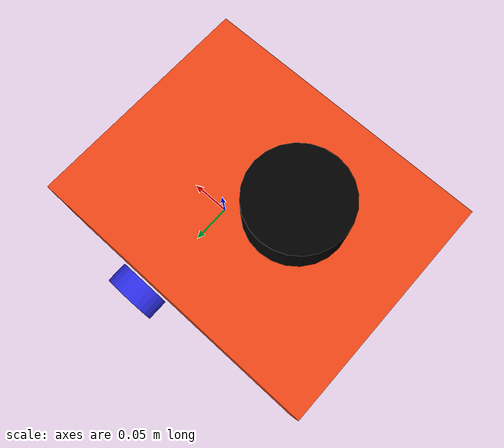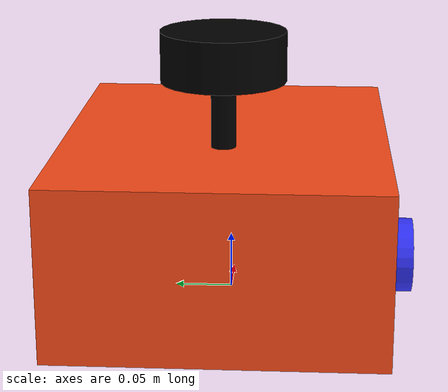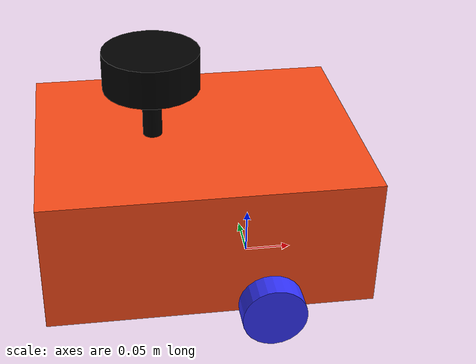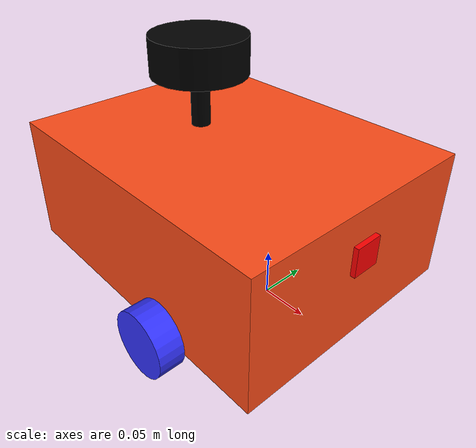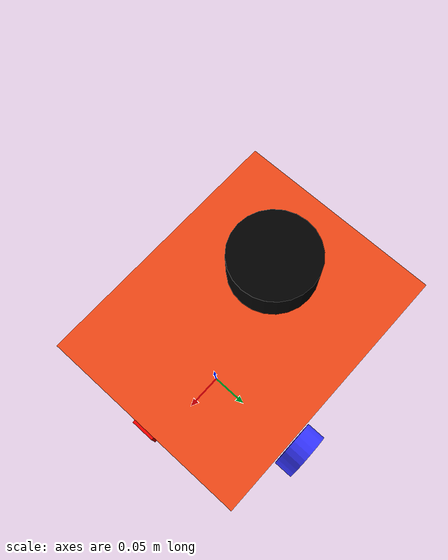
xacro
<?xml version="1.0"?>
<robot xmlns:xacro="http://www.ros.org/wiki/xacro"  name="robot">

    <xacro:arg name="use_ros2_control" default="true"/>
    <xacro:arg name="sim_mode" default="false"/>

    <xacro:include filename="rover_core.xacro" />

    <xacro:if value="$(arg use_ros2_control)">
        <xacro:include filename="ros2_control.xacro" />
    </xacro:if>
    <xacro:unless value="$(arg use_ros2_control)">
        <xacro:include filename="gazebo_control.xacro" />
    </xacro:unless>
    <xacro:include filename="lidar.xacro" />
    <xacro:include filename="camera.xacro" />
    <xacro:include filename="imu.xacro" />

</robot>

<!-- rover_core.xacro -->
<robot xmlns:xacro="http://www.ros.org/wiki/xacro" >

    <xacro:include filename="inertial_macros.xacro"/>

    <xacro:property name="chassis_length" value="0.335"/>
    <xacro:property name="chassis_width" value="0.265"/>
    <xacro:property name="chassis_height" value="0.138"/>
    <xacro:property name="chassis_mass" value="1.0"/>
    <xacro:property name="wheel_radius" value="0.033"/>
    <xacro:property name="wheel_thickness" value="0.026"/>
    <xacro:property name="wheel_mass" value="0.05"/>
    <xacro:property name="wheel_offset_x" value="0.226"/>
    <xacro:property name="wheel_offset_y" value="0.1485"/>
    <xacro:property name="wheel_offset_z" value="0.01"/>
    <xacro:property name="caster_wheel_radius" value="0.01"/>
    <xacro:property name="caster_wheel_mass" value="0.01"/>
    <xacro:property name="caster_wheel_offset_x" value="0.075"/>
    <xacro:property name="caster_wheel_offset_z" value="${wheel_offset_z - wheel_radius + caster_wheel_radius}"/>
    <material name="rover_white">
        <color rgba="1 1 1 1" />
    </material>

    <material name="rover_orange">
        <color rgba="1 0.3 0.1 1"/>
    </material>

    <material name="rover_blue">
        <color rgba="0.2 0.2 1 1"/>
    </material>

    <material name="rover_black">
        <color rgba="0 0 0 1"/>
    </material>

    <material name="rover_red">
        <color rgba="1 0 0 1"/>
    </material>

    <!-- BASE LINK -->

    <link name="base_link">

    </link>

    <!-- BASE_FOOTPRINT LINK -->

<joint name="base_footprint_joint" type="fixed">
        <parent link="base_footprint"/>
        <child link="base_link"/>
        <origin xyz="0 0 0.033" rpy="0 0 0"/>
    </joint>
    <link name="base_footprint">
    </link>

    <!-- CHASSIS LINK -->

    <joint name="chassis_joint" type="fixed">
        <parent link="base_link"/>
        <child link="chassis"/>
        <origin xyz="${-wheel_offset_x} 0 ${-wheel_offset_z}"/>
    </joint>

    <link name="chassis">
        <visual>
            <origin xyz="${chassis_length/2} 0 ${chassis_height/2}"/>
            <geometry>
                <box size="${chassis_length} ${chassis_width} ${chassis_height}"/>
            </geometry>
            <material name="rover_orange"/>
        </visual>
        <collision>
            <origin xyz="${chassis_length/2} 0 ${chassis_height/2}"/>
            <geometry>
                <box size="${chassis_length} ${chassis_width} ${chassis_height}"/>
            </geometry>
        </collision>
        <xacro:inertial_box mass="0.5" x="${chassis_length}" y="${chassis_width}" z="${chassis_height}">
            <origin xyz="${chassis_length/2} 0 ${chassis_height/2}" rpy="0 0 0"/>
        </xacro:inertial_box>
    </link>

    <gazebo reference="chassis">
        <material>Gazebo/Orange</material>
    </gazebo>

    <!-- LEFT WHEEL LINK -->

    <joint name="left_wheel_joint" type="continuous">
        <parent link="base_link"/>
        <child link="left_wheel"/>
        <origin xyz="0 ${wheel_offset_y} 0" rpy="-${pi/2} 0 0" />
        <axis xyz="0 0 1"/>
    </joint>

    <link name="left_wheel">
        <visual>
            <geometry>
                <cylinder radius="${wheel_radius}" length="${wheel_thickness}"/>
            </geometry>
            <material name="rover_blue"/>
        </visual>
        <collision>
            <geometry>
                <cylinder radius="${wheel_radius}" length="${wheel_thickness}"/>
            </geometry>
        </collision>
        <xacro:inertial_cylinder mass="${wheel_mass}" length="${wheel_thickness}" radius="${wheel_radius}">
            <origin xyz="0 0 0" rpy="0 0 0"/>
        </xacro:inertial_cylinder>
    </link>

    <gazebo reference="left_wheel">
        <material>Gazebo/Blue</material>
     <mu1>0.5</mu1>
<mu2>0.5</mu2>
    </gazebo>

    <!-- RIGHT WHEEL LINK -->

    <joint name="right_wheel_joint" type="continuous">
        <parent link="base_link"/>
        <child link="right_wheel"/>
        <origin xyz="0 ${-wheel_offset_y} 0" rpy="${pi/2} 0 0" />
        <axis xyz="0 0 -1"/>
    </joint>

    <link name="right_wheel">
        <visual>
            <geometry>
                <cylinder radius="${wheel_radius}" length="${wheel_thickness}"/>
            </geometry>
            <material name="rover_blue"/>
        </visual>
        <collision>
            <geometry>
               <cylinder radius="${wheel_radius}" length="${wheel_thickness}"/>
            </geometry>
        </collision>
        <xacro:inertial_cylinder mass="${wheel_mass}" length="${wheel_thickness}" radius="${wheel_radius}">
            <origin xyz="0 0 0" rpy="0 0 0"/>
        </xacro:inertial_cylinder>
    </link>

    <gazebo reference="right_wheel">
        <material>Gazebo/Blue</material>
       <mu1>0.5</mu1>
<mu2>0.5</mu2>
    </gazebo>

    <!-- CASTER WHEEL LINK -->

    <joint name="caster_wheel_joint" type="fixed">
        <parent link="chassis"/>
        <child link="caster_wheel"/>
        <origin xyz="${caster_wheel_offset_x} 0 ${caster_wheel_offset_z}"/>
    </joint>

    <link name="caster_wheel">
        <visual>
            <geometry>
                <sphere radius="${caster_wheel_radius}"/>
            </geometry>
            <material name="rover_white"/>
        </visual>
        <collision>
            <geometry>
                <sphere radius="${caster_wheel_radius}" />
            </geometry>
        </collision>
        <xacro:inertial_sphere mass="${caster_wheel_mass}" radius="${caster_wheel_radius}">
            <origin xyz="0 0 0" rpy="0 0 0"/>
        </xacro:inertial_sphere>
    </link>

  <gazebo reference="caster_wheel">
        <material>Gazebo/White</material>
        <mu1>0.00001</mu1>
        <mu2>0.00001</mu2>
    </gazebo>
</robot>

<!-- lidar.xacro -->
<robot xmlns:xacro="http://www.ros.org/wiki/xacro" >

    <joint name="laser_joint" type="fixed">
        <parent link="chassis"/>
        <child link="laser_frame"/>
        <origin xyz="0.122 0 0.212" rpy="0 0 0"/>
    </joint>

    <link name="laser_frame">
        <visual>
            <geometry>
                <cylinder radius="0.05" length="0.04"/>
            </geometry>
            <material name="rover_black"/>
        </visual>
        <visual>
            <origin xyz="0 0 -0.05"/>
            <geometry>
                <cylinder radius="0.01" length="0.1"/>
            </geometry>
            <material name="rover_black"/>
        </visual>
        <collision>
            <geometry>
                <cylinder radius="0.05" length="0.04"/>
            </geometry>
        </collision>
        <xacro:inertial_cylinder mass="0.01" length="0.04" radius="0.05">
            <origin xyz="0 0 0" rpy="0 0 0"/>
        </xacro:inertial_cylinder>
    </link>

 <gazebo reference="laser_frame">
    <material>Gazebo/Black</material>
    <sensor name="laser" type="gpu_lidar">
        <always_on>true</always_on>
        <visualize>true</visualize>
        <update_rate>10</update_rate>
        <topic>scan</topic>
        <gz_frame_id>laser_frame</gz_frame_id>
        <ray>
            <scan>
                <horizontal>
                    <samples>360</samples>
                    <resolution>1.0</resolution>
                    <min_angle>-3.14159</min_angle>
                    <max_angle>3.14159</max_angle>
                </horizontal>
            </scan>
            <range>
                <min>0.1</min>
                <max>12.0</max>
                <resolution>0.015</resolution>
            </range>
            <noise>
                <type>gaussian</type>
                <mean>0.0</mean>
                <stddev>0.01</stddev>
            </noise>
        </ray>
    </sensor>
</gazebo>
</robot>

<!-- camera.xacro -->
<robot xmlns:xacro="http://www.ros.org/wiki/xacro">

    <!-- 1. Keep your tilt property here -->
    <xacro:property name="camera_tilt" value="${0 * pi / 180}"/>

    <joint name="camera_joint" type="fixed">
    <parent link="chassis"/>
    <child link="camera_link"/>
    <origin xyz="0.335 -0.001 0.09" rpy="0 ${camera_tilt} 0"/>
    </joint>

    <link name="camera_link">
        <visual>
            <origin xyz="0 0 0" rpy="0 ${camera_tilt} 0" />
            <geometry>
                <box size="0.010 0.03 0.03" />
            </geometry>
            <material name="rover_red" />
        </visual>
    </link>

    <joint name="camera_optical_joint" type="fixed">
        <parent link="camera_link"/>
        <child link="camera_link_optical"/>
        <origin xyz="0 0 0" rpy="${-pi/2} 0 ${-pi/2}"/>
    </joint>

    <link name="camera_link_optical"></link>

    <gazebo reference="camera_link">
        <sensor name="camera" type="rgbd_camera">
            <always_on>true</always_on>
            <update_rate>30</update_rate>
            <topic>camera</topic>

            <!-- Use camera_link so Gazebo tilts the camera sensor frame naturally -->
            <gz_frame_id>camera_link</gz_frame_id>

            <camera name="camera">
                <horizontal_fov>0.96</horizontal_fov>
                <image>
                    <width>640</width>
                    <height>480</height>
                    <format>R8G8B8</format>
                </image>
                <clip>
                    <near>0.01</near>
                    <far>90.0</far>
                </clip>
                <depth_camera>
                    <clip>
                        <near>0.1</near>
                        <far>90.0</far>
                    </clip>
                </depth_camera>
            </camera>
        </sensor>
    </gazebo>

</robot>

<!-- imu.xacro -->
<robot xmlns:xacro="http://www.ros.org/wiki/xacro">

    <joint name="imu_joint" type="fixed">
        <parent link="chassis"/>
        <child link="imu_link"/>
        <origin xyz="0.15 0 0.1" rpy="0 0 0"/>
    </joint>

    <link name="imu_link">
        <visual>
            <geometry>
                <box size="0.02 0.02 0.02"/>
            </geometry>
            <material name="rover_black"/>
        </visual>
    </link>

    <gazebo reference="imu_link">
        <gravity>true</gravity>
        <sensor name="imu_sensor" type="imu">
            <always_on>true</always_on>
            <update_rate>100</update_rate>
            <visualize>true</visualize>
            <topic>imu</topic>
            <gz_frame_id>imu_link</gz_frame_id>

            <imu>
                <angular_velocity>
                    <x>
                        <noise type="gaussian">
                            <mean>0.0</mean>
                            <stddev>2e-4</stddev>
                        </noise>
                    </x>
                    <y>
                        <noise type="gaussian">
                            <mean>0.0</mean>
                            <stddev>2e-4</stddev>
                        </noise>
                    </y>
                    <z>
                        <noise type="gaussian">
                            <mean>0.0</mean>
                            <stddev>2e-4</stddev>
                        </noise>
                    </z>
                </angular_velocity>
                <linear_acceleration>
                    <x>
                        <noise type="gaussian">
                            <mean>0.0</mean>
                            <stddev>1.7e-2</stddev>
                        </noise>
                    </x>
                    <y>
                        <noise type="gaussian">
                            <mean>0.0</mean>
                            <stddev>1.7e-2</stddev>
                        </noise>
                    </y>
                    <z>
                        <noise type="gaussian">
                            <mean>0.0</mean>
                            <stddev>1.7e-2</stddev>
                        </noise>
                    </z>
                </linear_acceleration>
            </imu>

            <plugin filename="gz-sim-imu-system"
            name="gz::sim::systems::Imu"/>
        </sensor>
    </gazebo>

</robot>
